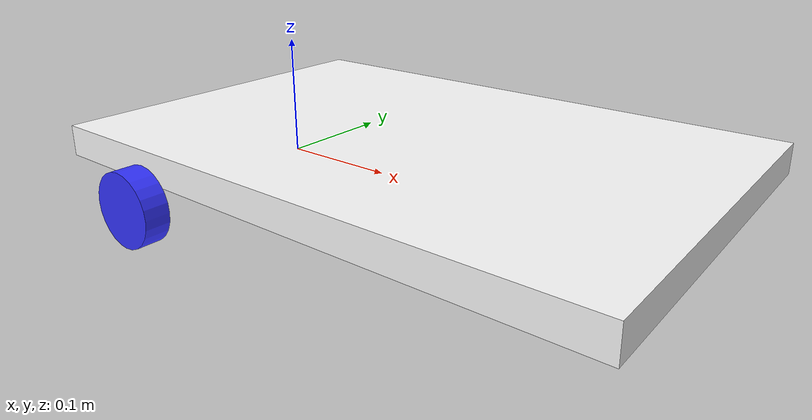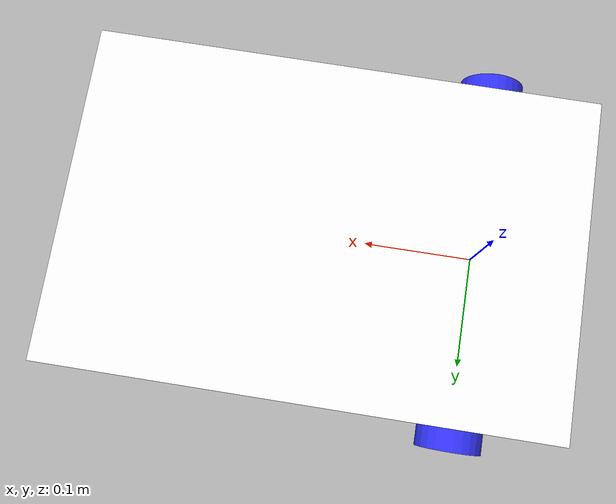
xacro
<?xml version="1.0"?>
<robot xmlns:xacro="http://www.ros.org/wiki/xacro" >

    <xacro:include filename="inertial_macros.xacro"/>

    <material name="white">
        <color rgba="1 1 1 1" />
    </material>

    <material name="orange">
        <color rgba="1 0.3 0.1 1"/>
    </material>

    <material name="blue">
        <color rgba="0.2 0.2 1 1"/>
    </material>

    <material name="black">
        <color rgba="0 0 0 1"/>
    </material>

    <material name="red">
        <color rgba="1 0 0 1"/>
    </material>

    <!-- BASE LINK -->

    <link name="base_link">

    </link>

    <!-- CHASSIS LINK -->

    <joint name="chassis_joint" type="fixed">
        <parent link="base_link"/>
        <child link="chassis"/>
        <origin xyz="-0.01 0 0"/>
    </joint>

    <link name="chassis">
        <visual>
            <origin xyz="0.15 0 0.03"/>
            <geometry>
                <box size="0.47 0.31 0.025"/>
            </geometry>
            <material name="white"/>
        </visual>
        <collision>
            <origin xyz="0.15 0 0.03"/>
            <geometry>
                <box size="0.47 0.31 0.025"/>
            </geometry>
        </collision>
        <xacro:inertial_box mass="0.5" x="0.3" y="0.3" z="0.03">
            <origin xyz="0.15 0 0.03" rpy="0 0 0"/>
        </xacro:inertial_box>
    </link>

    <gazebo reference="chassis">
        <material>Gazebo/White</material>
    </gazebo>

    <!-- LEFT WHEEL LINK -->

    <joint name="left_wheel_joint" type="continuous">
        <parent link="base_link"/>
        <child link="left_wheel"/>
        <origin xyz="0 0.165 0" rpy="-${pi/2} 0 0" />
        <axis xyz="0 0 1"/>
    </joint>

    <link name="left_wheel">
        <visual>
            <geometry>
                <cylinder radius="0.03" length="0.02"/>
            </geometry>
            <material name="blue"/>
        </visual>
        <collision>
            <geometry>
                <cylinder radius="0.03" length="0.02"/>
            </geometry>
        </collision>
        <xacro:inertial_cylinder mass="0.1" length="0.02" radius="0.03">
            <origin xyz="0 0 0" rpy="0 0 0"/>
        </xacro:inertial_cylinder>
    </link>

    <gazebo reference="left_wheel">
        <material>Gazebo/Blue</material>
    </gazebo>

    <!-- RIGHT WHEEL LINK -->

    <joint name="right_wheel_joint" type="continuous">
        <parent link="base_link"/>
        <child link="right_wheel"/>
        <origin xyz="0 -0.165 0" rpy="${pi/2} 0 0" />
        <axis xyz="0 0 -1"/>
    </joint>

    <link name="right_wheel">
        <visual>
            <geometry>
                <cylinder radius="0.03" length="0.02"/>
            </geometry>
            <material name="blue"/>
        </visual>
        <collision>
            <geometry>
                <cylinder radius="0.03" length="0.02"/>
            </geometry>
        </collision>
        <xacro:inertial_cylinder mass="0.1" length="0.02" radius="0.03">
            <origin xyz="0 0 0" rpy="0 0 0"/>
        </xacro:inertial_cylinder>
    </link>

    <gazebo reference="right_wheel">
        <material>Gazebo/Blue</material>
    </gazebo>

    <!-- CASTER WHEEL LINK -->

    <joint name="caster_wheel_joint" type="fixed">
        <parent link="chassis"/>
        <child link="caster_wheel"/>
        <origin xyz="0.30 0 0"/>
    </joint>

    <link name="caster_wheel">
        <visual>
            <geometry>
                <sphere radius="0.03"/>
            </geometry>
            <material name="black"/>
        </visual>
        <collision>
            <geometry>
                <sphere radius="0.03"/>
            </geometry>
        </collision>
        <xacro:inertial_sphere mass="0.1" radius="0.03">
            <origin xyz="0 0 0" rpy="0 0 0"/>
        </xacro:inertial_sphere>
    </link>

    <gazebo reference="castor_wheel">
        <material>Gazebo/Black</material>
        <mu1 value="0.001"/>
        <mu2 value="0.001"/>
    </gazebo>

</robot>
